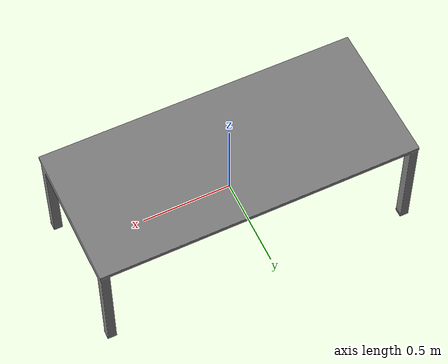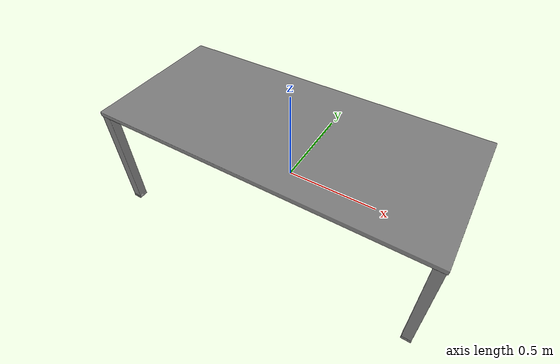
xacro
<?xml version="1.0"?>
<robot name="table" xmlns:xacro="http://ros.org/wiki/xacro">

  <!-- table main link -->
  <link name="table">
    <visual>
      <geometry>
        <mesh filename="file:///objects/table/meshes/table.stl">
          <scale>1 1 1</scale>
        </mesh>
      </geometry>
      <material name="grey">
        <color rgba="0.5 0.5 0.5 1.0"/>
      </material>
    </visual>
  </link>

  <!-- table base -->
  <link name="table_base">
      </link>

  <joint name="table_to_table_base" type="fixed">
    <origin xyz="0.0 0.0 -0.3245" rpy="0 0 0"/>
    <parent link="table"/>
    <child link="table_base" />
  </joint>

  <!-- table approach pose left -->
  <link name="table_approach_left">
      </link>

  <joint name="base_to_approach_left" type="fixed">
    <origin xyz="0.0 1.0 0.0" rpy="0 0 0"/>
    <parent link="table_base"/>
    <child link="table_approach_left" />
  </joint>

  <!-- table approach pose right -->
  <link name="table_approach_right">
      </link>

  <joint name="base_to_approach_right" type="fixed">
    <origin xyz="0.0 -1.0 0.0" rpy="0 0 3.14159265359"/>
    <parent link="table_base"/>
    <child link="table_approach_right" />
  </joint>

  <!-- table top -->
  <link name="table_top">
  </link>

  <joint name="table_to_table_top" type="fixed">
    <origin xyz="0.0 0.0 0.3245" rpy="0 0 0"/>
    <parent link="table"/>
    <child link="table_top" />
  </joint>

  <!-- table_pick_place 1-->
  <link name="table_pick_place_1">
  </link>

  <joint name="table_top_to_table_pick_place_1" type="fixed">
    <origin xyz="-0.35 0.1 0.0" rpy="0 0 0"/>
    <parent link="table_top"/>
    <child link="table_pick_place_1" />
  </joint>

  <!-- table_pick_place 2-->
  <link name="table_pick_place_2">
  </link>

  <joint name="table_top_to_table_pick_place_2" type="fixed">
    <origin xyz="0.0 0.1 0.0" rpy="0 0 0"/>
    <parent link="table_top"/>
    <child link="table_pick_place_2" />
  </joint>

  <!-- table_pick_place 3-->
  <link name="table_pick_place_3">
  </link>

  <joint name="table_top_to_table_pick_place_3" type="fixed">
    <origin xyz="0.35 0.1 0.0" rpy="0 0 0"/>
    <parent link="table_top"/>
    <child link="table_pick_place_3" />
  </joint>

  <!-- table center of 3D bounding box -->
  <link name="table_center_bb">
    </link>

  <joint name="table_to_center_bb" type="fixed">
    <origin xyz="0.0 0.0 0.0" rpy="0 0 0"/>
    <parent link="table"/>
    <child link="table_center_bb" />
  </joint>

</robot>
